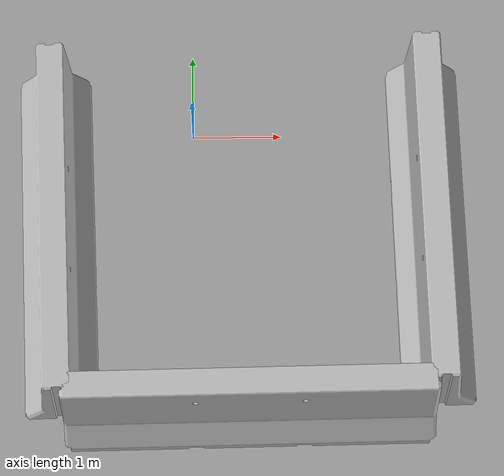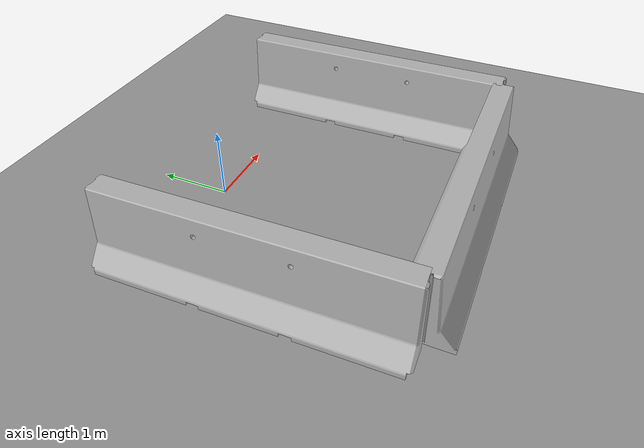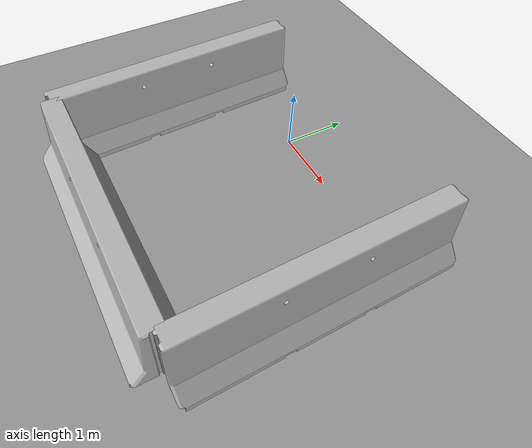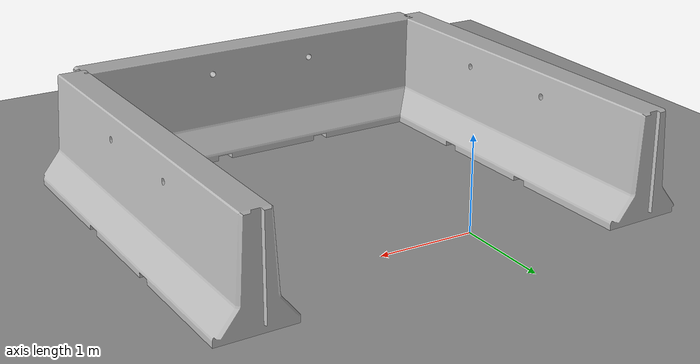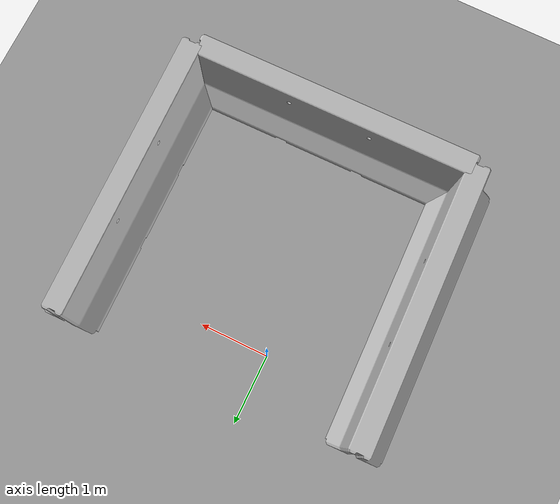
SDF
<sdf version="1.6">
 <world name="default">
  <model name="jersey_barrier">
   <static>1</static>
   <link name="link">
    <visual name="visual">
     <geometry>
      <mesh><uri>model://jersey_barrier/meshes/jersey_barrier.dae</uri><scale>1 1 1</scale></mesh>
     </geometry>
    </visual>
    <collision name="upright">
     <pose>0 0 0.5715 0 -0 0</pose>
     <geometry><box><size>4.06542 0.3063 1.143</size></box></geometry>
    </collision>
    <collision name="base">
     <pose>0 0 0.032258 0 -0 0</pose>
     <geometry><box><size>4.06542 0.8107 0.064516</size></box></geometry>
    </collision>
    <collision name="base2">
     <pose>0 0 0.1 0 -0 0</pose>
     <geometry><box><size>4.06542 0.65 0.1</size></box></geometry>
    </collision>
    <collision name="base3">
     <pose>0 0 0.2 0 -0 0</pose>
     <geometry><box><size>4.06542 0.5 0.1</size></box></geometry>
    </collision>
    <collision name="left-angle">
     <pose>0 -0.224 0.2401 0.9 -0 0</pose>
     <geometry><box><size>4.06542 0.5 0.064516</size></box></geometry>
    </collision>
    <collision name="right-angle">
     <pose>0 0.224 0.2401 -0.9 0 0</pose>
     <geometry><box><size>4.06542 0.5 0.064516</size></box></geometry>
    </collision>
    <velocity_decay><linear>0</linear><angular>0</angular></velocity_decay>
   </link>
   <pose>-1.5232 -1.33861 0 0 0 -1.53887</pose>
  </model>
  <model name="ground_plane_0">
   <static>1</static>
   <link name="link">
    <collision name="collision">
     <geometry><plane><normal>0 0 1</normal><size>100 100</size></plane></geometry>
     <surface><friction><ode><mu>100</mu><mu2>50</mu2></ode></friction></surface>
    </collision>
    <visual name="visual">
     <cast_shadows>0</cast_shadows>
     <geometry><plane><normal>0 0 1</normal><size>100 100</size></plane></geometry>
     <material>
      <script><uri>file://media/materials/scripts/gazebo.material</uri><name>Gazebo/Grey</name></script>
     </material>
    </visual>
    <velocity_decay><linear>0</linear><angular>0</angular></velocity_decay>
   </link>
   <pose>0.497681 0 0 0 -0 0</pose>
  </model>
  <model name="jersey_barrier_clone">
   <static>1</static>
   <link name="link">
    <visual name="visual">
     <geometry>
      <mesh><uri>model://jersey_barrier/meshes/jersey_barrier.dae</uri><scale>1 1 1</scale></mesh>
     </geometry>
    </visual>
    <collision name="upright">
     <pose>0 0 0.5715 0 -0 0</pose>
     <geometry><box><size>4.06542 0.3063 1.143</size></box></geometry>
    </collision>
    <collision name="base">
     <pose>0 0 0.032258 0 -0 0</pose>
     <geometry><box><size>4.06542 0.8107 0.064516</size></box></geometry>
    </collision>
    <collision name="base2">
     <pose>0 0 0.1 0 -0 0</pose>
     <geometry><box><size>4.06542 0.65 0.1</size></box></geometry>
    </collision>
    <collision name="base3">
     <pose>0 0 0.2 0 -0 0</pose>
     <geometry><box><size>4.06542 0.5 0.1</size></box></geometry>
    </collision>
    <collision name="left-angle">
     <pose>0 -0.224 0.2401 0.9 -0 0</pose>
     <geometry><box><size>4.06542 0.5 0.064516</size></box></geometry>
    </collision>
    <collision name="right-angle">
     <pose>0 0.224 0.2401 -0.9 0 0</pose>
     <geometry><box><size>4.06542 0.5 0.064516</size></box></geometry>
    </collision>
    <velocity_decay><linear>0</linear><angular>0</angular></velocity_decay>
   </link>
   <pose>2.67075 -1.24241 0 0 0 -1.55313</pose>
  </model>
  <model name="jersey_barrier_clone_0_clone">
   <static>1</static>
   <link name="link">
    <visual name="visual">
     <geometry>
      <mesh><uri>model://jersey_barrier/meshes/jersey_barrier.dae</uri><scale>1 1 1</scale></mesh>
     </geometry>
    </visual>
    <collision name="upright">
     <pose>0 0 0.5715 0 -0 0</pose>
     <geometry><box><size>4.06542 0.3063 1.143</size></box></geometry>
    </collision>
    <collision name="base">
     <pose>0 0 0.032258 0 -0 0</pose>
     <geometry><box><size>4.06542 0.8107 0.064516</size></box></geometry>
    </collision>
    <collision name="base2">
     <pose>0 0 0.1 0 -0 0</pose>
     <geometry><box><size>4.06542 0.65 0.1</size></box></geometry>
    </collision>
    <collision name="base3">
     <pose>0 0 0.2 0 -0 0</pose>
     <geometry><box><size>4.06542 0.5 0.1</size></box></geometry>
    </collision>
    <collision name="left-angle">
     <pose>0 -0.224 0.2401 0.9 -0 0</pose>
     <geometry><box><size>4.06542 0.5 0.064516</size></box></geometry>
    </collision>
    <collision name="right-angle">
     <pose>0 0.224 0.2401 -0.9 0 0</pose>
     <geometry><box><size>4.06542 0.5 0.064516</size></box></geometry>
    </collision>
    <velocity_decay><linear>0</linear><angular>0</angular></velocity_decay>
   </link>
   <pose>0.606316 -3.29322 0 0 -0 0.013248</pose>
  </model>
 </world>
</sdf>
